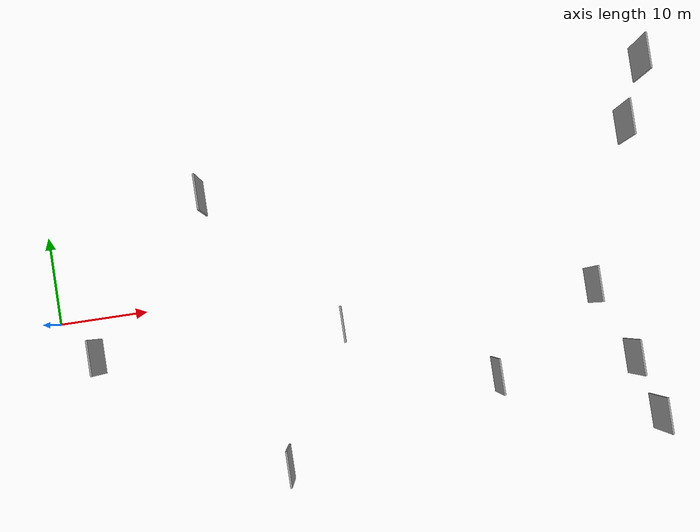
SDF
<sdf version="1.6">
 <world name="default">
  <scene>
   <sky><clouds><speed>12</speed></clouds></sky>
   <ambient>0.4 0.4 0.4 1</ambient>
   <background>0.7 0.7 0.7 1</background>
   <shadows>1</shadows>
  </scene>
  <gravity>0 0 -9.8066</gravity>
  <magnetic_field>6e-06 2.3e-05 -4.2e-05</magnetic_field>
  <physics default="0" name="default_physics" type="ode">
   <ode>
    <solver>
     <type>quick</type>
     <iters>10</iters>
     <sor>1.0</sor>
     <use_dynamic_moi_rescaling>0</use_dynamic_moi_rescaling>
    </solver>
    <constraints>
     <cfm>0</cfm>
     <erp>0.2</erp>
     <contact_max_correcting_vel>100</contact_max_correcting_vel>
     <contact_surface_layer>0.001</contact_surface_layer>
    </constraints>
   </ode>
   <max_step_size>0.004</max_step_size>
   <real_time_factor>1</real_time_factor>
   <real_time_update_rate>250</real_time_update_rate>
  </physics>
  <light name="sun" type="directional">
   <pose>0 0 10 0 0 0</pose>
   <diffuse>0.8 0.8 0.8 1</diffuse>
   <specular>0.2 0.2 0.2 1</specular>
   <attenuation>
    <range>1000</range>
    <constant>0.9</constant>
    <linear>0.01</linear>
    <quadratic>0.001</quadratic>
   </attenuation>
   <direction>-0.5 0.1 -0.9</direction>
  </light>
  <model name="grey_wall_1">
   <static>1</static>
   <pose>18.3442 11.8744 0.0 0.000000 0.000000 1.570796</pose>
   <link name="link">
    <pose>0 0 5.00 0 0 0</pose>
    <collision name="collision"><geometry><box><size>4.00 0.2 10.00</size></box></geometry></collision>
    <visual name="visual">
     <cast_shadows>0</cast_shadows>
     <geometry><box><size>4.00 0.2 10.00</size></box></geometry>
     <material>
      <script>
       <uri>model://grey_wall/materials/scripts</uri>
       <uri>model://grey_wall/materials/textures</uri>
       <name>vrc/grey_wall</name>
      </script>
     </material>
    </visual>
   </link>
  </model>
  <model name="grey_wall_2">
   <static>1</static>
   <pose>31.9562 -4.7070 0.0 0.000000 0.000000 1.570796</pose>
   <link name="link">
    <pose>0 0 5.00 0 0 0</pose>
    <collision name="collision"><geometry><box><size>4.00 0.2 10.00</size></box></geometry></collision>
    <visual name="visual">
     <cast_shadows>0</cast_shadows>
     <geometry><box><size>4.00 0.2 10.00</size></box></geometry>
     <material>
      <script>
       <uri>model://grey_wall/materials/scripts</uri>
       <uri>model://grey_wall/materials/textures</uri>
       <name>vrc/grey_wall</name>
      </script>
     </material>
    </visual>
   </link>
  </model>
  <model name="grey_wall_3">
   <static>1</static>
   <pose>65.3948 -19.7613 0.0 0.000000 0.000000 1.570796</pose>
   <link name="link">
    <pose>0 0 5.00 0 0 0</pose>
    <collision name="collision"><geometry><box><size>4.00 0.2 10.00</size></box></geometry></collision>
    <visual name="visual">
     <cast_shadows>0</cast_shadows>
     <geometry><box><size>4.00 0.2 10.00</size></box></geometry>
     <material>
      <script>
       <uri>model://grey_wall/materials/scripts</uri>
       <uri>model://grey_wall/materials/textures</uri>
       <name>vrc/grey_wall</name>
      </script>
     </material>
    </visual>
   </link>
  </model>
  <model name="grey_wall_4">
   <static>1</static>
   <pose>4.3292 -4.2550 0.0 0.000000 0.000000 1.570796</pose>
   <link name="link">
    <pose>0 0 5.00 0 0 0</pose>
    <collision name="collision"><geometry><box><size>4.00 0.2 10.00</size></box></geometry></collision>
    <visual name="visual">
     <cast_shadows>0</cast_shadows>
     <geometry><box><size>4.00 0.2 10.00</size></box></geometry>
     <material>
      <script>
       <uri>model://grey_wall/materials/scripts</uri>
       <uri>model://grey_wall/materials/textures</uri>
       <name>vrc/grey_wall</name>
      </script>
     </material>
    </visual>
   </link>
  </model>
  <model name="grey_wall_5">
   <static>1</static>
   <pose>66.4357 12.9231 0.0 0.000000 0.000000 1.570796</pose>
   <link name="link">
    <pose>0 0 5.00 0 0 0</pose>
    <collision name="collision"><geometry><box><size>4.00 0.2 10.00</size></box></geometry></collision>
    <visual name="visual">
     <cast_shadows>0</cast_shadows>
     <geometry><box><size>4.00 0.2 10.00</size></box></geometry>
     <material>
      <script>
       <uri>model://grey_wall/materials/scripts</uri>
       <uri>model://grey_wall/materials/textures</uri>
       <name>vrc/grey_wall</name>
      </script>
     </material>
    </visual>
   </link>
  </model>
  <model name="grey_wall_6">
   <static>1</static>
   <pose>23.8979 -19.3158 0.0 0.000000 0.000000 1.570796</pose>
   <link name="link">
    <pose>0 0 5.00 0 0 0</pose>
    <collision name="collision"><geometry><box><size>4.00 0.2 10.00</size></box></geometry></collision>
    <visual name="visual">
     <cast_shadows>0</cast_shadows>
     <geometry><box><size>4.00 0.2 10.00</size></box></geometry>
     <material>
      <script>
       <uri>model://grey_wall/materials/scripts</uri>
       <uri>model://grey_wall/materials/textures</uri>
       <name>vrc/grey_wall</name>
      </script>
     </material>
    </visual>
   </link>
  </model>
  <model name="grey_wall_7">
   <static>1</static>
   <pose>69.2705 19.7623 0.0 0.000000 0.000000 1.570796</pose>
   <link name="link">
    <pose>0 0 5.00 0 0 0</pose>
    <collision name="collision"><geometry><box><size>4.00 0.2 10.00</size></box></geometry></collision>
    <visual name="visual">
     <cast_shadows>0</cast_shadows>
     <geometry><box><size>4.00 0.2 10.00</size></box></geometry>
     <material>
      <script>
       <uri>model://grey_wall/materials/scripts</uri>
       <uri>model://grey_wall/materials/textures</uri>
       <name>vrc/grey_wall</name>
      </script>
     </material>
    </visual>
   </link>
  </model>
  <model name="grey_wall_8">
   <static>1</static>
   <pose>48.1310 -12.9068 0.0 0.000000 0.000000 1.570796</pose>
   <link name="link">
    <pose>0 0 5.00 0 0 0</pose>
    <collision name="collision"><geometry><box><size>4.00 0.2 10.00</size></box></geometry></collision>
    <visual name="visual">
     <cast_shadows>0</cast_shadows>
     <geometry><box><size>4.00 0.2 10.00</size></box></geometry>
     <material>
      <script>
       <uri>model://grey_wall/materials/scripts</uri>
       <uri>model://grey_wall/materials/textures</uri>
       <name>vrc/grey_wall</name>
      </script>
     </material>
    </visual>
   </link>
  </model>
  <model name="grey_wall_9">
   <static>1</static>
   <pose>63.4708 -13.1205 0.0 0.000000 0.000000 1.570796</pose>
   <link name="link">
    <pose>0 0 5.00 0 0 0</pose>
    <collision name="collision"><geometry><box><size>4.00 0.2 10.00</size></box></geometry></collision>
    <visual name="visual">
     <cast_shadows>0</cast_shadows>
     <geometry><box><size>4.00 0.2 10.00</size></box></geometry>
     <material>
      <script>
       <uri>model://grey_wall/materials/scripts</uri>
       <uri>model://grey_wall/materials/textures</uri>
       <name>vrc/grey_wall</name>
      </script>
     </material>
    </visual>
   </link>
  </model>
  <model name="grey_wall_10">
   <static>1</static>
   <pose>60.1947 -4.5288 0.0 0.000000 0.000000 1.570796</pose>
   <link name="link">
    <pose>0 0 5.00 0 0 0</pose>
    <collision name="collision"><geometry><box><size>4.00 0.2 10.00</size></box></geometry></collision>
    <visual name="visual">
     <cast_shadows>0</cast_shadows>
     <geometry><box><size>4.00 0.2 10.00</size></box></geometry>
     <material>
      <script>
       <uri>model://grey_wall/materials/scripts</uri>
       <uri>model://grey_wall/materials/textures</uri>
       <name>vrc/grey_wall</name>
      </script>
     </material>
    </visual>
   </link>
  </model>
 </world>
</sdf>
